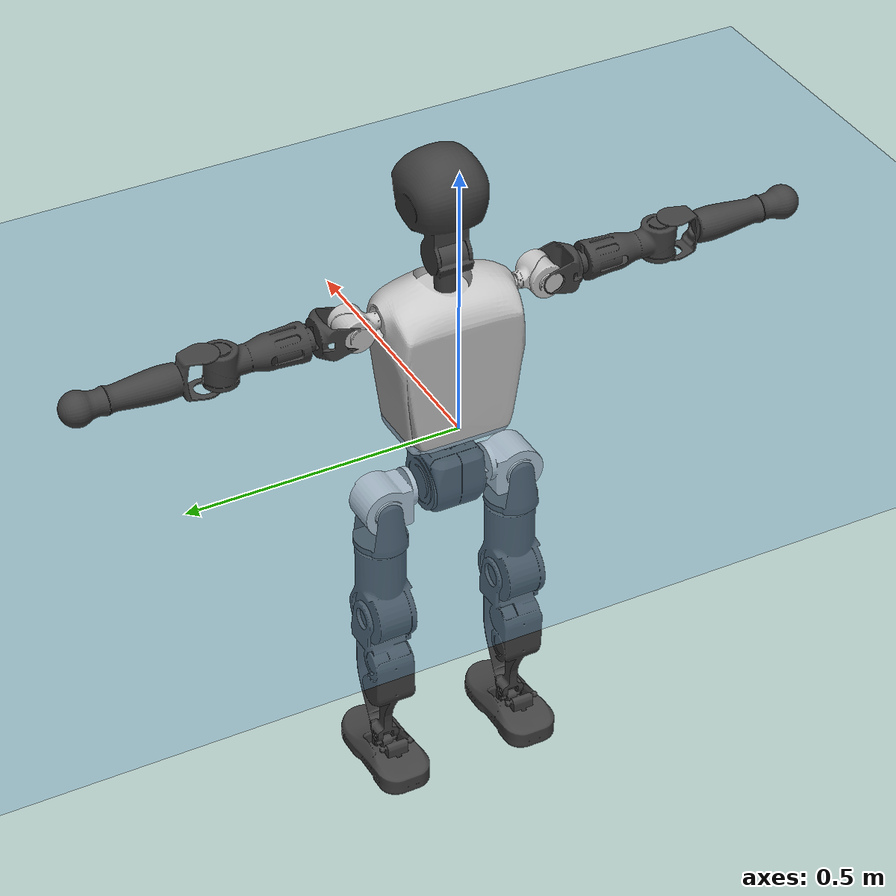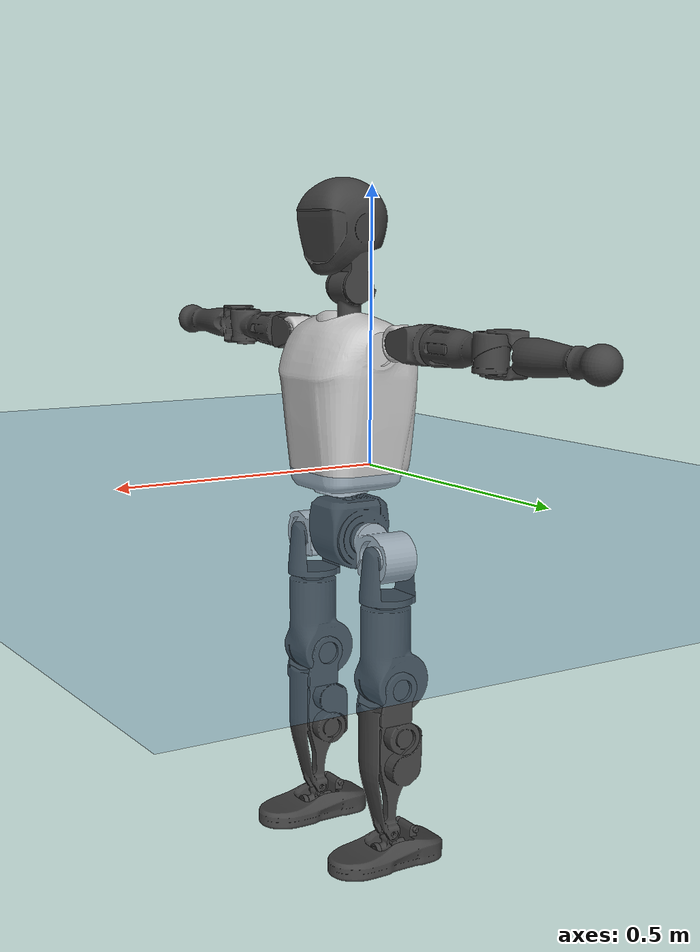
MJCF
<mujoco model="T1">
  <compiler angle="radian" assetdir="assets" balanceinertia="true" inertiafromgeom="false"/>

  <option timestep="0.005" density="1.2" viscosity="2e-05"/>

  <size nkey="1"/>

  <visual>
    <quality shadowsize="8192"/>
    <map shadowclip="0.5"/>
  </visual>

  <default>
    <default class="/">
      <joint armature="0.01" damping="0.01" frictionloss="0.1"/>
      <geom contype="0" conaffinity="0" group="1" solref="-1000 -80"/>
      <site size="0.01 0.005 0.005" group="5"/>
      <general forcelimited="true" biastype="affine" gainprm="25" biasprm="0 -25 -0.6"/>
      <default class="t1">
        <geom rgba="0.25 0.25 0.25 1"/>
        <default class="visual">
          <geom type="mesh" group="2"/>
        </default>
        <default class="collision">
          <geom group="3"/>
        </default>
        <default class="foot">
          <geom size="0.1115 0.05 0.015" type="box" condim="6" group="4" priority="1" solimp="0.015 1 0.015"/>
        </default>
        <default class="reward_collision_sphere">
          <geom group="5" rgba="1 0 0 1"/>
        </default>
      </default>
    </default>
  </default>

  <asset>
    <texture type="skybox" colorspace="auto" name="//unnamed_texture_0" builtin="gradient" rgb1="0.95 0.95 0.95" rgb2="0.95 0.95 0.95" width="100" height="600"/>
    <texture type="2d" colorspace="auto" name="texplane" builtin="checker" rgb1="0.345 0.575 0.748" rgb2="0.345 0.575 0.748" markrgb="1 1 1" width="512" height="512"/>
    <material name="MatPlane" class="/" texture="texplane" texuniform="true" texrepeat="2 2" specular="0.9"/>
    <mesh name="Trunk" class="/" file="Trunk.stl"/>
    <mesh name="H1" class="/" file="H1.stl"/>
    <mesh name="H2" class="/" file="H2.stl"/>
    <mesh name="AL1" class="/" file="AL1.stl"/>
    <mesh name="AL2" class="/" file="AL2.stl"/>
    <mesh name="AL3" class="/" file="AL3.stl"/>
    <mesh name="left_hand_link" class="/" file="left_hand_link.stl"/>
    <mesh name="AR1" class="/" file="AR1.stl"/>
    <mesh name="AR2" class="/" file="AR2.stl"/>
    <mesh name="AR3" class="/" file="AR3.stl"/>
    <mesh name="right_hand_link" class="/" file="right_hand_link.stl"/>
    <mesh name="Waist" class="/" file="Waist.stl"/>
    <mesh name="Hip_Pitch_Left" class="/" file="Hip_Pitch_Left.stl"/>
    <mesh name="Hip_Roll_Left" class="/" file="Hip_Roll_Left.stl"/>
    <mesh name="Hip_Yaw_Left" class="/" file="Hip_Yaw_Left.stl"/>
    <mesh name="Shank_Left" class="/" file="Shank_Left.stl"/>
    <mesh name="Ankle_Cross_Left" class="/" file="Ankle_Cross_Left.stl"/>
    <mesh name="left_foot_link" class="/" file="left_foot_link.stl"/>
    <mesh name="Hip_Pitch_Right" class="/" file="Hip_Pitch_Right.stl"/>
    <mesh name="Hip_Roll_Right" class="/" file="Hip_Roll_Right.stl"/>
    <mesh name="Hip_Yaw_Right" class="/" file="Hip_Yaw_Right.stl"/>
    <mesh name="Shank_Right" class="/" file="Shank_Right.stl"/>
    <mesh name="Ankle_Cross_Right" class="/" file="Ankle_Cross_Right.stl"/>
    <mesh name="right_foot_link" class="/" file="right_foot_link.stl"/>
  </asset>

  <worldbody>
    <geom name="floor" class="/" size="100 100 0.125" type="plane" group="0" material="MatPlane"/>
    <light name="toplight_shadow" class="/" pos="0 0 5" dir="0.0990148 0.0990148 -0.990148" type="directional" ambient="0.04 0.04 0.04" diffuse="0.55 0.55 0.55" specular="0.12 0.12 0.12"/>
    <light name="toplight_fill" class="/" pos="0 0 5" dir="0.0990148 0.0990148 -0.990148" type="directional" castshadow="false" ambient="0.04 0.04 0.04" diffuse="0.3 0.3 0.3" specular="0.08 0.08 0.08"/>
    <body name="trunk" childclass="t1" pos="0.000117266 0.000872106 0.000732783" quat="1 0.000152828 2.68489e-05 4.2497e-05">
      <inertial pos="0.0391886 0.00128415 0.11271" quat="0.999975 4.19612e-05 -0.0070525 -0.000526523" mass="11.6148" diaginertia="0.0194859 0.185274 0.0761108"/>
      <joint name="//unnamed_joint_0" type="free" armature="0" damping="0" frictionloss="0"/>
      <geom name="//unnamed_geom_1" class="visual" rgba="0.76 0.76 0.76 1" mesh="Trunk"/>
      <geom name="//unnamed_geom_2" class="collision" size="0.0745684 0.0994246 0.149137" pos="0.0439072 0 0.127353" type="box"/>
      <geom name="//unnamed_geom_3" class="reward_collision_sphere" size="0.114338" pos="0.0439072 0 0.106128"/>
      <geom name="//unnamed_geom_4" class="reward_collision_sphere" size="0.0149137" pos="0.0439072 0.101122 0"/>
      <geom name="//unnamed_geom_5" class="reward_collision_sphere" size="0.0149137" pos="0.0439072 -0.101122 0"/>
      <geom name="//unnamed_geom_6" class="reward_collision_sphere" size="0.0149137" pos="0.0439072 0.127295 0.19103"/>
      <geom name="//unnamed_geom_7" class="reward_collision_sphere" size="0.0149137" pos="0.0439072 -0.127295 0.19103"/>
      <site name="imu" pos="0.00386191 0.00487046 -0.00134763" size="0.00994246"/>
      <camera name="track" pos="0 -2.37934 0" quat="0.707107 0.707107 0 0" mode="trackcom"/>
      <camera name="ego_camera" pos="0.0892781 0 0.445737" quat="-0.5 -0.5 0.5 0.5"/>
      <body name="H1" pos="0.0461422 -0.00115546 0.258262" quat="1 1.9489e-05 2.45868e-06 -1.70734e-05">
        <inertial pos="-0.00110691 2.91805e-05 0.060556" quat="0.762242 -0.014808 -0.00198255 0.64712" mass="0.435789" diaginertia="4.99927e-05 0.000529933 0.00020368"/>
        <joint name="AAHead_yaw" pos="0 0 0" axis="0.00465097 0.00104559 0.999989" stiffness="0.0030118" range="-1.56876 1.54588" armature="0.00997434" damping="0.0110463" frictionloss="0.0893707"/>
        <geom name="//unnamed_geom_8" class="visual" mesh="H1"/>
        <body name="H2" pos="-0.000332871 0.000730074 0.0647294" quat="1 5.64526e-05 1.19195e-05 8.44468e-07">
          <inertial pos="0.00611151 -0.000189869 0.105352" quat="0.98892 0.0998308 -0.074343 -0.0808908" mass="0.617304" diaginertia="0.000427012 0.00457116 0.00231641"/>
          <joint name="Head_pitch" pos="0 0 0" axis="-3.03893e-05 -1 -0.000109656" range="-1.21908 0.350792" armature="0.00985534" damping="0.00872784" frictionloss="0.101611"/>
          <geom name="//unnamed_geom_9" class="visual" mesh="H2"/>
          <geom name="//unnamed_geom_10" class="collision" size="0.0795397" pos="0.00731787 0 0.116741"/>
          <geom name="//unnamed_geom_11" class="reward_collision_sphere" size="0.0894821" pos="0.0146357 0 0.106128"/>
        </body>
      </body>
      <body name="AL1" pos="0.0433803 0.127275 0.23346" quat="1 -0.000315664 2.86293e-05 0.000508074">
        <inertial pos="-0.000586429 0.0543269 0.00100259" quat="0.504613 0.501049 -0.502918 0.491314" mass="0.523823" diaginertia="0.000284584 0.00313925 0.000395958"/>
        <joint name="Left_Shoulder_Pitch" pos="0 0 0" axis="0.00193788 0.999998 -0.000148915" range="-3.30991 1.23468" armature="0.010024" damping="0.0148151" frictionloss="0.0988722"/>
        <geom name="//unnamed_geom_12" class="visual" rgba="0.76 0.76 0.76 1" mesh="AL1"/>
        <body name="AL2" pos="0.000865034 0.0576161 0.000550623" quat="1 6.87299e-05 -0.000309159 -1.00468e-06">
          <inertial pos="0.00411688 0.0467575 -0.000971135" quat="0.48009 0.512046 -0.492845 0.514223" mass="0.155673" diaginertia="8.40043e-05 0.00082501 0.000241954"/>
          <joint name="Left_Shoulder_Roll" pos="0 0 0" axis="-0.999999 -0.00146599 -0.000885943" range="-1.57042 1.73755" armature="0.00970944" damping="0.00454071" frictionloss="0.098688"/>
          <geom name="//unnamed_geom_13" class="visual" mesh="AL2"/>
          <body name="AL3" pos="0.000652331 0.0744281 -0.000193748" quat="1 -4.30717e-05 -4.43369e-05 0.000122951">
            <inertial pos="-0.00168173 0.10155 0.000508564" quat="0.706199 0.70801 -0.00191098 0.000194948" mass="1.01065" diaginertia="0.00273341 0.0308282 0.000837234"/>
            <joint name="Left_Elbow_Pitch" pos="0 0 0" axis="0.00437364 -0.99999 -0.00121193" range="-2.26447 2.29497" armature="0.00980769" damping="0.0104985" frictionloss="0.100935"/>
            <geom name="//unnamed_geom_14" class="visual" mesh="AL3"/>
            <geom name="//unnamed_geom_15" class="collision" size="0.0298274 0.0745684" pos="0 0.0594836 0" quat="0.707105 0.707108 0 0" type="cylinder"/>
            <geom name="//unnamed_geom_16" class="reward_collision_sphere" size="0.0357929"/>
            <body name="left_hand_link" pos="-0.000568665 0.176818 -0.000678817" quat="1 9.91319e-05 0.00021475 -0.000128292">
              <inertial pos="7.54465e-05 0.129888 0.00076362" quat="0.708592 0.705615 0.00196122 0.000500915" mass="0.32359" diaginertia="0.00170182 0.0194686 0.000287704"/>
              <joint name="Left_Elbow_Yaw" pos="0 0 0" axis="0.00505726 0.00295684 0.999983" stiffness="0.00210953" range="-2.47112 0.00222364" armature="0.00996549" damping="0.00170567" frictionloss="0.101117"/>
              <geom name="//unnamed_geom_17" class="visual" mesh="left_hand_link"/>
              <geom name="//unnamed_geom_18" class="collision" size="0.0298274 0.0869965" pos="0 0.154657 0" quat="0.707105 0.707108 0 0" type="cylinder"/>
              <geom name="//unnamed_geom_19" class="reward_collision_sphere" size="0.0497123"/>
              <geom name="//unnamed_geom_20" class="reward_collision_sphere" size="0.0347986" pos="0 0.130864 0"/>
              <geom name="//unnamed_geom_21" class="reward_collision_sphere" size="0.0347986" pos="0 0.25578 0"/>
            </body>
          </body>
        </body>
      </body>
      <body name="AR1" pos="0.0417152 -0.125949 0.232553" quat="1 -5.85066e-05 0.000624037 3.77469e-05">
        <inertial pos="-0.000399196 -0.0537658 -0.00148575" quat="0.499647 0.498966 -0.50767 0.493615" mass="0.519611" diaginertia="0.000283178 0.00300828 0.000388338"/>
        <joint name="Right_Shoulder_Pitch" pos="0 0 0" axis="0.00368382 -0.999988 -0.00328746" stiffness="0.00131561" range="-1.22575 3.31456" armature="0.0102576" damping="0.000828101" frictionloss="0.091325"/>
        <geom name="//unnamed_geom_22" class="visual" rgba="0.76 0.76 0.76 1" mesh="AR1"/>
        <body name="AR2" pos="-0.00159121 -0.0554811 -0.000429316" quat="1 6.77752e-05 7.0671e-05 2.71281e-05">
          <inertial pos="0.00358715 -0.0470084 0.000436969" quat="0.516699 0.484527 -0.508602 0.489468" mass="0.156277" diaginertia="8.25502e-05 0.000819968 0.000233814"/>
          <joint name="Right_Shoulder_Roll" pos="0 0 0" axis="-0.999984 0.00464581 0.00310448" stiffness="0.00319378" range="-1.74144 1.57444" armature="0.00992803" damping="0" frictionloss="0.0980127"/>
          <geom name="//unnamed_geom_23" class="visual" mesh="AR2"/>
          <body name="AR3" pos="-0.000203439 -0.0725742 0.000738596" quat="1 -4.77818e-05 0.000344104 0.000207834">
            <inertial pos="-0.00091963 -0.101936 -5.57089e-05" quat="0.707648 0.706562 -0.0022067 -0.000622085" mass="0.993363" diaginertia="0.00267607 0.0295662 0.000836623"/>
            <joint name="Right_Elbow_Pitch" pos="0 0 0" axis="-0.00311893 0.999995 -0.000701448" range="-2.28251 2.25587" armature="0.0100132" damping="0.00857471" frictionloss="0.100648"/>
            <geom name="//unnamed_geom_24" class="visual" mesh="AR3"/>
            <geom name="//unnamed_geom_25" class="collision" size="0.0298274 0.0745684" pos="0 -0.0594836 0" quat="0.707105 0.707108 0 0" type="cylinder"/>
            <geom name="//unnamed_geom_26" class="reward_collision_sphere" size="0.0357929"/>
            <body name="right_hand_link" pos="-0.000618261 -0.173915 0.00136654" quat="1 0.000134103 1.29164e-05 -9.9216e-06">
              <inertial pos="-0.000159154 -0.1304 -9.88059e-05" quat="0.70613 0.708082 -5.37767e-06 0.000132413" mass="0.320143" diaginertia="0.00169771 0.0191919 0.000289944"/>
              <joint name="Right_Elbow_Yaw" pos="0 0 0" axis="0.00161344 0.000655797 0.999998" range="-0.00999985 2.44348" armature="0.00972635" damping="0.00633474" frictionloss="0.10673"/>
              <geom name="//unnamed_geom_27" class="visual" mesh="right_hand_link"/>
              <geom name="//unnamed_geom_28" class="collision" size="0.0298274 0.0869965" pos="0 -0.154657 0" quat="0.707105 0.707108 0 0" type="cylinder"/>
              <geom name="//unnamed_geom_29" class="reward_collision_sphere" size="0.0497123"/>
              <geom name="//unnamed_geom_30" class="reward_collision_sphere" size="0.0347986" pos="0 -0.130864 0"/>
              <geom name="//unnamed_geom_31" class="reward_collision_sphere" size="0.0347986" pos="0 -0.25578 0"/>
            </body>
          </body>
        </body>
      </body>
      <body name="Waist" pos="0.0463595 -0.000237509 -0.124224" quat="1 0.000114448 0.000162666 -9.8361e-05">
        <inertial pos="-0.000639907 -0.000464959 0.00805043" quat="0.983588 -0.00173097 -0.180375 0.0040529" mass="2.55738" diaginertia="0.00111082 0.0127645 0.00637753"/>
        <joint name="Waist" pos="0 0 0" axis="0.00310837 0.00518812 0.999982" range="-1.55477 1.57359" armature="0.00984318" damping="0.0121453" frictionloss="0.0993225"/>
        <geom name="//unnamed_geom_32" class="visual" mesh="Waist"/>
        <body name="Hip_Pitch_Left" pos="0.000222722 0.125072 -0.00173439" quat="1 7.01711e-06 -9.82281e-07 1.3498e-05">
          <inertial pos="0.000766846 -0.00854509 -0.0196573" quat="0.975836 0.217874 0.0163576 0.00266015" mass="1.02278" diaginertia="0.000378575 0.00346549 0.00169302"/>
          <joint name="Left_Hip_Pitch" pos="0 0 0" axis="-0.000689219 0.999997 -0.00236519" range="-1.80041 1.59862" armature="0.0107378" damping="0.0084006" frictionloss="0.095311"/>
          <geom name="//unnamed_geom_33" class="visual" rgba="0.76 0.76 0.76 1" mesh="Hip_Pitch_Left"/>
          <body name="Hip_Roll_Left" pos="0.00126748 0.000567284 -0.0222202" quat="1 -0.000239389 0.000305403 0.000112658">
            <inertial pos="0.00218133 0.000316598 -0.0580907" quat="0.706993 -0.00803703 -0.014065 0.707035" mass="0.366961" diaginertia="0.000359584 0.00353816 0.000686619"/>
            <joint name="Left_Hip_Roll" pos="0 0 0" axis="-0.999998 0.00187892 -4.43602e-06" range="-1.56816 0.205024" armature="0.0106243" damping="0.0160092" frictionloss="0.103318"/>
            <geom name="//unnamed_geom_34" class="visual" mesh="Hip_Roll_Left"/>
            <geom name="//unnamed_geom_35" class="reward_collision_sphere" size="0.0546835"/>
            <body name="Hip_Yaw_Left" pos="0.000567404 0.000167154 -0.0859624" quat="1 7.62131e-05 -3.59979e-06 -0.000137908">
              <inertial pos="-0.00573865 -0.000848175 -0.0950609" quat="0.695842 -0.0340692 -0.0338898 0.716585" mass="2.15123" diaginertia="0.00540401 0.059415 0.0034948"/>
              <joint name="Left_Hip_Yaw" pos="0 0 0" axis="0.000466393 0.000713374 -1" range="-0.99058 1.02973" armature="0.00991329" damping="0.0117672" frictionloss="0.0982767"/>
              <geom name="//unnamed_geom_36" class="visual" mesh="Hip_Yaw_Left"/>
              <geom name="//unnamed_geom_37" class="collision" size="0.0497123 0.0795397" type="cylinder"/>
              <body name="Shank_Left" pos="-0.00808487 -0.000108969 -0.144281" quat="1 -2.30991e-05 8.62161e-05 -6.00153e-05">
                <inertial pos="-0.00459126 0.00124222 -0.131053" quat="0.997558 0.00112654 -0.0240402 0.0655717" mass="1.66352" diaginertia="0.00731045 0.0820142 0.00250407"/>
                <joint name="Left_Knee_Pitch" pos="0 0 0" axis="0.000543268 0.999999 -0.000918264" range="-0.0215108 2.36102" armature="0.00995535" damping="0.00938144" frictionloss="0.0996648"/>
                <geom name="//unnamed_geom_38" class="visual" mesh="Shank_Left"/>
                <geom name="//unnamed_geom_39" class="collision" size="0.0497123 0.0745684" pos="0 0 -0.127353" type="cylinder"/>
                <geom name="//unnamed_geom_40" class="reward_collision_sphere" size="0.064626"/>
                <body name="Ankle_Cross_Left" pos="-0.00108749 -7.90243e-05 -0.297458" quat="1 0.000262631 -0.000144096 0.000109377">
                  <inertial pos="-0.00160394 7.71256e-05 -0.00931723" quat="0.442948 0.551668 0.550488 0.443196" mass="0.0716201" diaginertia="6.10213e-06 6.11318e-05 1.51953e-05"/>
                  <joint name="Left_Ankle_Pitch" pos="0 0 0" axis="0.000558633 1 0.000615237" range="-0.84328 0.355466" armature="0.010354" damping="0.0150019" frictionloss="0.0966355"/>
                  <geom name="//unnamed_geom_41" class="visual" mesh="Ankle_Cross_Left"/>
                  <body name="left_foot_link" pos="-9.88332e-05 9.31581e-05 -0.0125171" quat="1 -0.000390533 0.00031371 0.000148153">
                    <inertial pos="-0.000315136 0.000292242 -0.0102139" quat="-0.001467 0.620613 -0.00258292 0.784111" mass="0.666791" diaginertia="0.00055169 0.00556702 0.00298301"/>
                    <joint name="Left_Ankle_Roll" pos="0 0 0" axis="-0.99999 -0.00447451 -0.000124152" range="-0.448632 0.43953" armature="0.00985941" damping="0.0154959" frictionloss="0.0989503"/>
                    <geom name="//unnamed_geom_42" class="visual" mesh="left_foot_link"/>
                    <geom name="left_foot" class="foot" size="0.104876 0.0501134 0.0158275" pos="0.00731787 0 -0.0159192"/>
                    <geom name="//unnamed_geom_44" class="reward_collision_sphere" size="0.0517008" pos="0.00731787 0 -0.0159192"/>
                    <geom name="//unnamed_geom_45" class="reward_collision_sphere" size="0.0298274" pos="0.0695198 -0.0273625 -0.0159192"/>
                    <geom name="//unnamed_geom_46" class="reward_collision_sphere" size="0.0298274" pos="-0.0512251 -0.0273625 -0.0159192"/>
                    <site name="left_foot" class="foot" pos="0.00731787 0 -0.0159192" size="0.00994246"/>
                  </body>
                </body>
              </body>
            </body>
          </body>
        </body>
        <body name="Hip_Pitch_Right" pos="-0.0012121 -0.126568 -0.000548043" quat="1 4.8043e-05 -0.000228762 0.000214822">
          <inertial pos="-9.86998e-06 0.00965619 -0.0180331" quat="0.973477 -0.22814 0.0168648 -0.0031215" mass="0.999792" diaginertia="0.000378229 0.00349334 0.00163588"/>
          <joint name="Right_Hip_Pitch" pos="0 0 0" axis="-0.0022633 -0.999997 -0.000775895" range="-1.57283 1.76233" armature="0.0101062" damping="0.0100263" frictionloss="0.0998455"/>
          <geom name="//unnamed_geom_47" class="visual" rgba="0.76 0.76 0.76 1" mesh="Hip_Pitch_Right"/>
          <body name="Hip_Roll_Right" pos="0.00139917 -0.000401504 -0.0211944" quat="1 -0.000183314 0.000125286 0.000270188">
            <inertial pos="0.00104106 -0.00100993 -0.0573755" quat="0.710964 -0.00722848 0.000175934 0.703191" mass="0.383497" diaginertia="0.000364952 0.00366341 0.000693823"/>
            <joint name="Right_Hip_Roll" pos="0 0 0" axis="-0.999996 -0.00283801 -0.000140034" range="-0.162185 1.57602" armature="0.00984507" damping="0.00647061" frictionloss="0.0950112"/>
            <geom name="//unnamed_geom_48" class="visual" mesh="Hip_Roll_Right"/>
            <geom name="//unnamed_geom_49" class="reward_collision_sphere" size="0.0546835"/>
            <body name="Hip_Yaw_Right" pos="0.00074974 0.000294497 -0.0871787" quat="1 2.73185e-05 8.93606e-05 0.000109655">
              <inertial pos="-0.00517261 0.000328028 -0.0962525" quat="0.713237 -0.0320062 -0.0369763 0.699214" mass="2.12738" diaginertia="0.0053734 0.0595459 0.00350563"/>
              <joint name="Right_Hip_Yaw" pos="0 0 0" axis="0.010158 -0.00945429 -0.999904" stiffness="0.00298654" range="-0.992481 1.00336" armature="0.0103758" damping="0.000202207" frictionloss="0.0996024"/>
              <geom name="//unnamed_geom_50" class="visual" mesh="Hip_Yaw_Right"/>
              <geom name="//unnamed_geom_51" class="collision" size="0.0497123 0.0795397" type="cylinder"/>
              <body name="Shank_Right" pos="-0.00944635 -0.000600342 -0.141241" quat="1 -0.000180286 -0.000352129 3.62137e-06">
                <inertial pos="-0.00458032 -1.53094e-05 -0.130559" quat="0.99924 -0.0002811 -0.0255128 -0.0294581" mass="1.79826" diaginertia="0.00759262 0.0861278 0.00271687"/>
                <joint name="Right_Knee_Pitch" pos="0 0 0" axis="0.00277676 -0.999985 0.00468143" range="-2.3148 -0.0151443" armature="0.0108122" damping="0.00910176" frictionloss="0.0995058"/>
                <geom name="//unnamed_geom_52" class="visual" mesh="Shank_Right"/>
                <geom name="//unnamed_geom_53" class="collision" size="0.0497123 0.0745684" pos="0 0 -0.127353" type="cylinder"/>
                <geom name="//unnamed_geom_54" class="reward_collision_sphere" size="0.064626"/>
                <body name="Ankle_Cross_Right" pos="0.000580662 -0.000777827 -0.297884" quat="1 3.09545e-05 4.15088e-05 -0.000116172">
                  <inertial pos="-0.00266642 0.000629303 -0.00854175" quat="0.443335 0.550484 0.548539 0.446684" mass="0.0706536" diaginertia="6.03687e-06 6.04884e-05 1.49775e-05"/>
                  <joint name="Right_Ankle_Pitch" pos="0 0 0" axis="-2.96039e-05 -0.999994 0.00351886" range="-0.366351 0.849587" armature="0.00998473" damping="0.0109595" frictionloss="0.0992234"/>
                  <geom name="//unnamed_geom_55" class="visual" mesh="Ankle_Cross_Right"/>
                  <body name="right_foot_link" pos="0.00154375 -0.00102023 -0.01203" quat="1 -1.7817e-05 -2.26627e-05 -8.35208e-05">
                    <inertial pos="-0.00180193 -4.29565e-05 -0.00980295" quat="-0.000913396 0.620922 0.000291463 0.783872" mass="0.669946" diaginertia="0.000563181 0.00564954 0.0029433"/>
                    <joint name="Right_Ankle_Roll" pos="0 0 0" axis="-0.999997 0.00223208 0.000818876" stiffness="0.00194856" range="-0.469928 0.440241" armature="0.0102505" damping="0.000849227" frictionloss="0.10197"/>
                    <geom name="//unnamed_geom_56" class="visual" mesh="right_foot_link"/>
                    <geom name="right_foot" class="foot" size="0.0997977 0.0481587 0.0155696" pos="0.00731787 0 -0.0159192"/>
                    <geom name="//unnamed_geom_58" class="reward_collision_sphere" size="0.0397698"/>
                    <geom name="//unnamed_geom_59" class="reward_collision_sphere" size="0.0298274" pos="0.00731787 0 -0.0159192"/>
                    <geom name="//unnamed_geom_60" class="reward_collision_sphere" size="0.0298274" pos="0.0695198 0.0273625 -0.0159192"/>
                    <geom name="//unnamed_geom_61" class="reward_collision_sphere" size="0.0298274" pos="-0.0512251 0.0273625 -0.0159192"/>
                    <site name="right_foot" class="foot" pos="0.00731787 0 -0.0159192" size="0.00994246"/>
                  </body>
                </body>
              </body>
            </body>
          </body>
        </body>
      </body>
    </body>
  </worldbody>

  <contact>
    <pair class="/" geom1="floor" geom2="left_foot" name="//unnamed_contact_0"/>
    <pair class="/" geom1="floor" geom2="right_foot" name="//unnamed_contact_1"/>
  </contact>

  <actuator>
    <general name="AAHead_yaw" class="/" joint="AAHead_yaw" forcerange="-6.84081 6.84081" gainprm="24.8994" biasprm="0 -24.8994 -0.577972"/>
    <general name="Head_pitch" class="/" joint="Head_pitch" forcerange="-6.96865 6.96865" gainprm="24.8994" biasprm="0 -24.8994 -0.577972"/>
    <general name="Left_Shoulder_Pitch" class="/" joint="Left_Shoulder_Pitch" forcerange="-18.2884 18.2884" gainprm="24.8994" biasprm="0 -24.8994 -0.577972"/>
    <general name="Left_Shoulder_Roll" class="/" joint="Left_Shoulder_Roll" forcerange="-18.2315 18.2315" gainprm="24.8994" biasprm="0 -24.8994 -0.577972"/>
    <general name="Left_Elbow_Pitch" class="/" joint="Left_Elbow_Pitch" forcerange="-17.8348 17.8348" gainprm="24.8994" biasprm="0 -24.8994 -0.577972"/>
    <general name="Left_Elbow_Yaw" class="/" joint="Left_Elbow_Yaw" forcerange="-18.5031 18.5031" gainprm="24.8994" biasprm="0 -24.8994 -0.577972"/>
    <general name="Right_Shoulder_Pitch" class="/" joint="Right_Shoulder_Pitch" forcerange="-17.4485 17.4485" gainprm="24.8994" biasprm="0 -24.8994 -0.577972"/>
    <general name="Right_Shoulder_Roll" class="/" joint="Right_Shoulder_Roll" forcerange="-18.468 18.468" gainprm="24.8994" biasprm="0 -24.8994 -0.577972"/>
    <general name="Right_Elbow_Pitch" class="/" joint="Right_Elbow_Pitch" forcerange="-18.8652 18.8652" gainprm="24.8994" biasprm="0 -24.8994 -0.577972"/>
    <general name="Right_Elbow_Yaw" class="/" joint="Right_Elbow_Yaw" forcerange="-17.2655 17.2655" gainprm="24.8994" biasprm="0 -24.8994 -0.577972"/>
    <general name="Waist" class="/" joint="Waist" forcerange="-28.7972 28.7972" gainprm="24.8994" biasprm="0 -24.8994 -0.577972"/>
    <general name="Left_Hip_Pitch" class="/" joint="Left_Hip_Pitch" forcerange="-44.097 44.097" gainprm="24.8994" biasprm="0 -24.8994 -0.577972"/>
    <general name="Left_Hip_Roll" class="/" joint="Left_Hip_Roll" forcerange="-30.0507 30.0507" gainprm="24.8994" biasprm="0 -24.8994 -0.577972"/>
    <general name="Left_Hip_Yaw" class="/" joint="Left_Hip_Yaw" forcerange="-29.2791 29.2791" gainprm="24.8994" biasprm="0 -24.8994 -0.577972"/>
    <general name="Left_Knee_Pitch" class="/" joint="Left_Knee_Pitch" forcerange="-60.4577 60.4577" gainprm="24.8994" biasprm="0 -24.8994 -0.577972"/>
    <general name="Left_Ankle_Pitch" class="/" joint="Left_Ankle_Pitch" forcerange="-19.8705 19.8705" gainprm="24.8994" biasprm="0 -24.8994 -0.577972"/>
    <general name="Left_Ankle_Roll" class="/" joint="Left_Ankle_Roll" forcerange="-15.4493 15.4493" gainprm="24.8994" biasprm="0 -24.8994 -0.577972"/>
    <general name="Right_Hip_Pitch" class="/" joint="Right_Hip_Pitch" forcerange="-44.7847 44.7847" gainprm="24.8994" biasprm="0 -24.8994 -0.577972"/>
    <general name="Right_Hip_Roll" class="/" joint="Right_Hip_Roll" forcerange="-29.6387 29.6387" gainprm="24.8994" biasprm="0 -24.8994 -0.577972"/>
    <general name="Right_Hip_Yaw" class="/" joint="Right_Hip_Yaw" forcerange="-31.6624 31.6624" gainprm="24.8994" biasprm="0 -24.8994 -0.577972"/>
    <general name="Right_Knee_Pitch" class="/" joint="Right_Knee_Pitch" forcerange="-59.6103 59.6103" gainprm="24.8994" biasprm="0 -24.8994 -0.577972"/>
    <general name="Right_Ankle_Pitch" class="/" joint="Right_Ankle_Pitch" forcerange="-19.7411 19.7411" gainprm="24.8994" biasprm="0 -24.8994 -0.577972"/>
    <general name="Right_Ankle_Roll" class="/" joint="Right_Ankle_Roll" forcerange="-15.3023 15.3023" gainprm="24.8994" biasprm="0 -24.8994 -0.577972"/>
  </actuator>

  <sensor>
    <gyro site="imu" name="imu_angular_velocity"/>
    <velocimeter site="imu" name="imu_linear_velocity"/>
    <framelinvel objtype="site" objname="left_foot" name="left_foot_global_linear_velocity"/>
    <framelinvel objtype="site" objname="right_foot" name="right_foot_global_linear_velocity"/>
  </sensor>

  <keyframe>
    <key name="home" qpos="0 0 0.6385 1 0 0 0 0 0 0 1.4 0 -0.4 0 -1.4 0 0.4 0 -0.4 0 0 0.8 -0.4 0 0.4 0 0 -0.8 0.4 0"/>
  </keyframe>
</mujoco>
